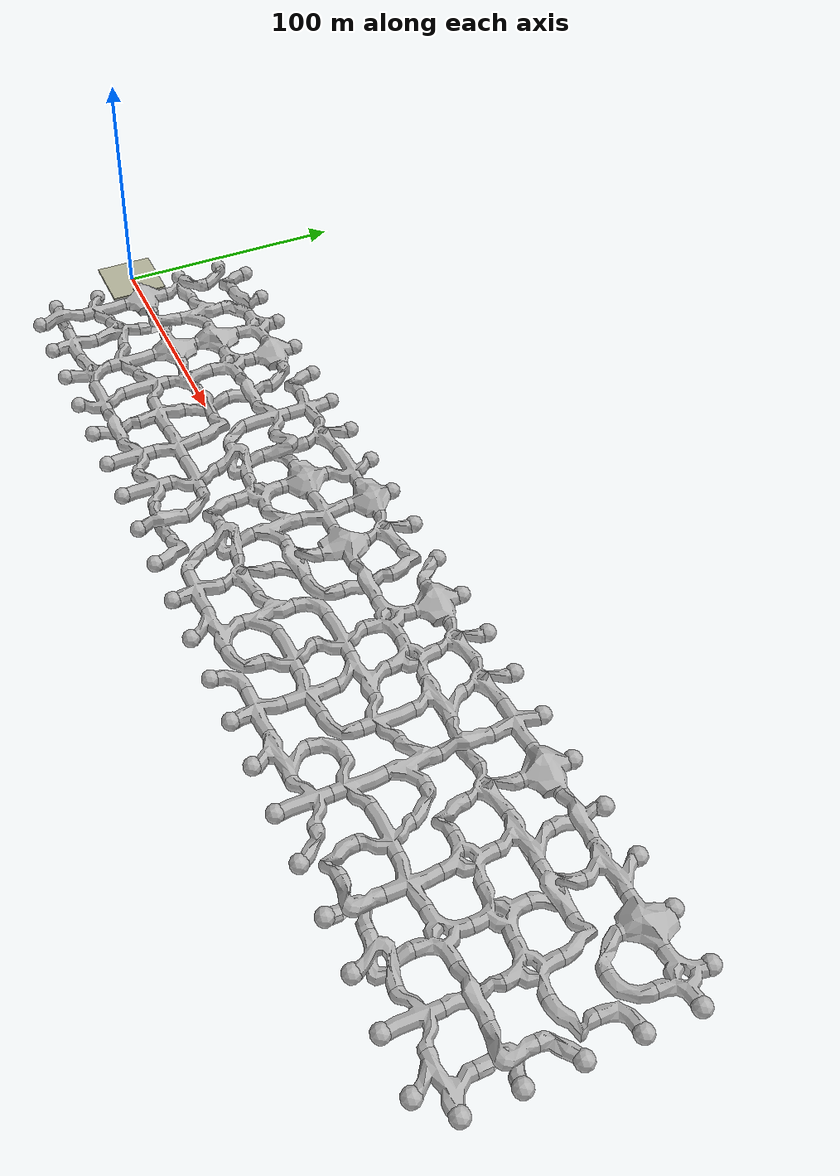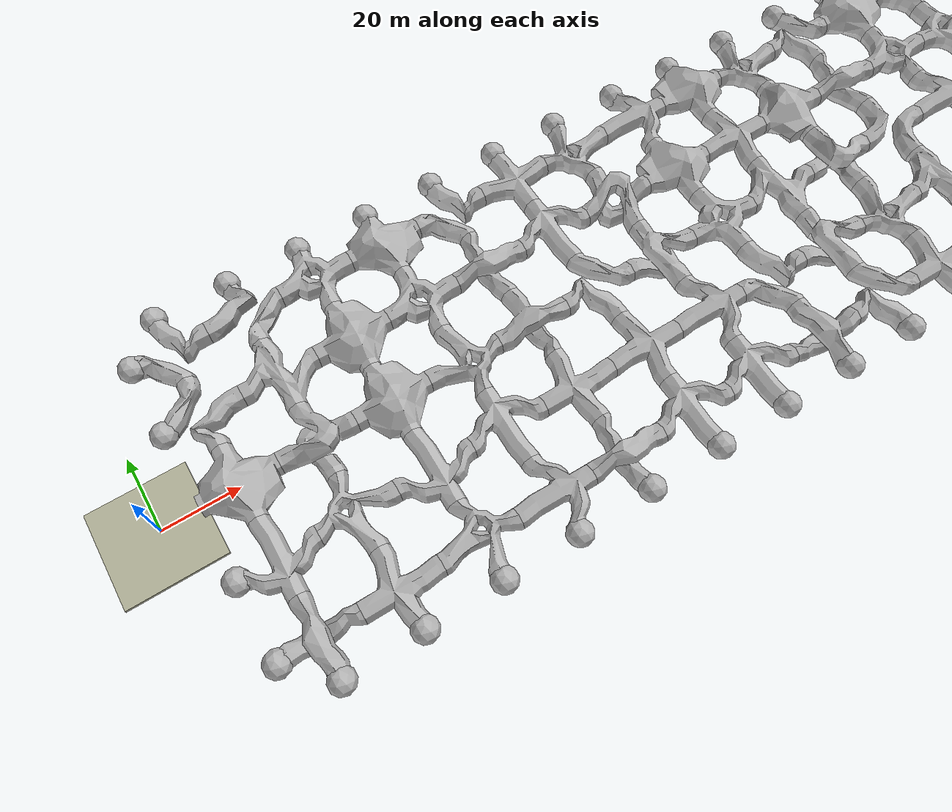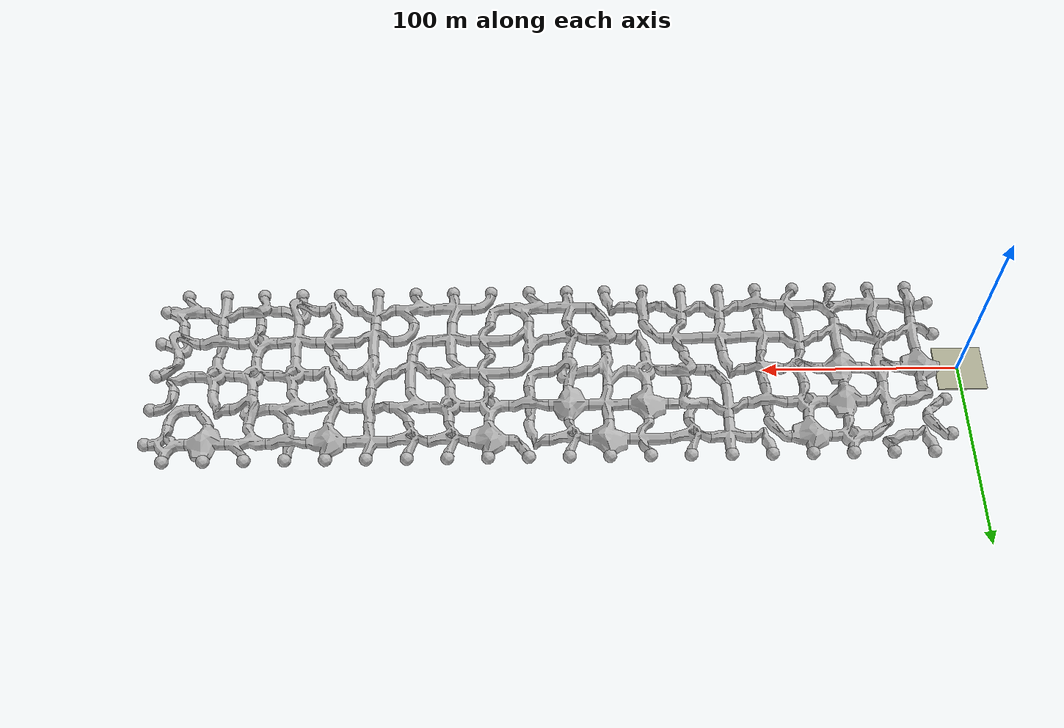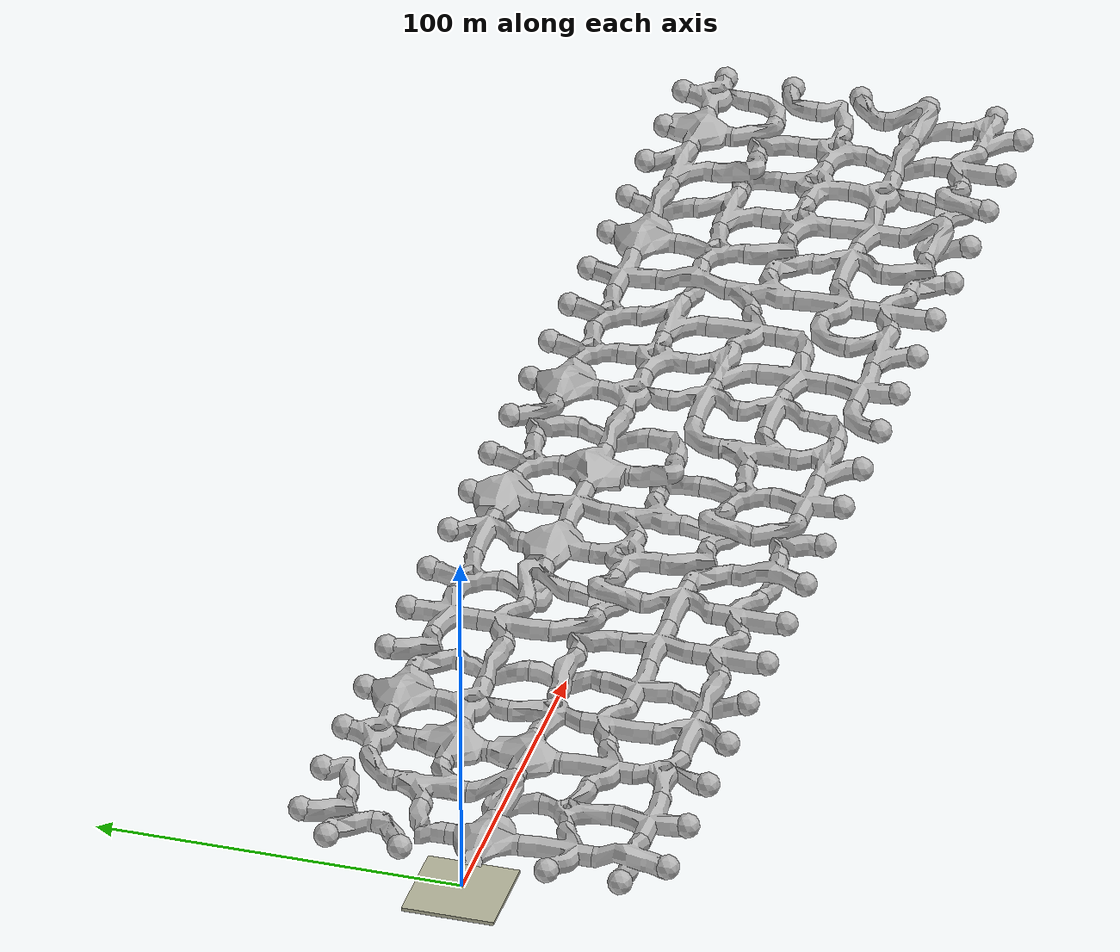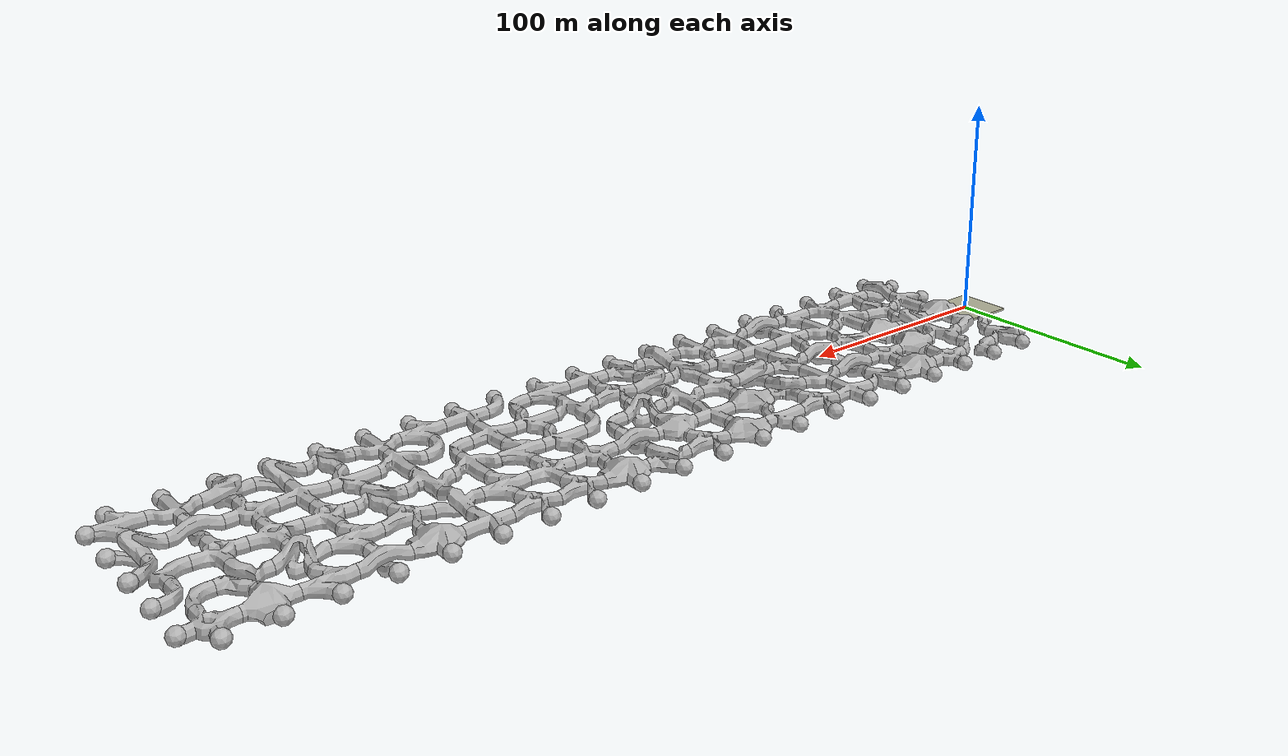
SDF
<sdf version="1.6">
 <world name="default">
  <scene>
   <ambient>0.8 0.8 0.8 1.0</ambient>
   <background>0.34 0.39 0.43 1.0</background>
   <grid>false</grid>
   <origin_visual>false</origin_visual>
  </scene>
  <model name="staging">
   <pose>-1.1817160000000015 0 -0.002 0 0 0</pose>
   <static>true</static>
   <link name="link">
    <pose>0 0 -0.5 0 0 0</pose>
    <visual name="visual">
     <geometry><box><size>25 25 1</size></box></geometry>
     <material>
      <script><uri>file://media/materials/scripts/gazebo.material</uri><name>Gazebo/Residential</name></script>
     </material>
    </visual>
    <collision name="collision"><geometry><box><size>25 20 1</size></box></geometry></collision>
   </link>
  </model>
  <model name="tunnel_entrance">
   <pose>10
        0
        -0.001
        0
        0
        -1.5707963267948966</pose>
   <static>true</static>
   <link name="link">
    <collision name="collision">
     <geometry>
      <mesh>
       <scale>0.008
                0.008 0.008</scale>
       <uri>model://tunnel_entrance/meshes/Entrance.obj</uri>
      </mesh>
     </geometry>
    </collision>
    <visual name="visual">
     <geometry>
      <mesh>
       <scale>0.008
                0.008 0.008</scale>
       <uri>model://tunnel_entrance/meshes/Entrance.obj</uri>
      </mesh>
     </geometry>
    </visual>
   </link>
  </model>
  <model name="start_area">
   <static>true</static>
   <pose>10
        0
        1.5
        0
        0
        0</pose>
   <link name="link">
    <collision name="collision">
     <geometry><box><size>1.0
                5.0
                3.0</size></box></geometry>
     <surface><contact><collide_without_contact>1</collide_without_contact></contact></surface>
    </collision>
    <sensor name="start_area_sensor" type="contact"><contact><collision>collision</collision></contact></sensor>
   </link>
   <plugin name="touch_start_area" filename="libTouchPlugin.so">
    <sensor>start_area_sensor</sensor>
    <time>0.001</time>
    <namespace>subt/start</namespace>
    <enabled>true</enabled>
   </plugin>
  </model>
  <plugin name="game_logic_plugin" filename="libGameLogicPlugin.so"/>
  <light name="user_spot_light_0" type="spot">
   <pose>12 0 15 0 0.65 0</pose>
   <diffuse>1 1 1 1</diffuse>
   <specular>0.1 0.1 0.1 1</specular>
   <direction>0 0 -1</direction>
   <attenuation>
    <range>30</range>
    <constant>0.001</constant>
    <linear>0.01</linear>
    <quadratic>0.000</quadratic>
   </attenuation>
   <spot><inner_angle>0.0</inner_angle><outer_angle>1.5</outer_angle><falloff>0.01</falloff></spot>
  </light>
  <include>
   <uri>model://cave_tile_10</uri>
   <name>tile_1</name>
   <pose>20 -40 0 0 0 -1.5707963267948966</pose>
  </include>
  <include>
   <uri>model://cave_tile_7</uri>
   <name>tile_2</name>
   <pose>20 -20 0 0 0 1.5707963267948966</pose>
  </include>
  <include><uri>model://cave_tile_6</uri><name>tile_3</name><pose>20 0 0 0 0 0</pose></include>
  <include><uri>model://cave_tile_4</uri><name>tile_4</name><pose>20 20 0 0 0 3.141592653589793</pose></include>
  <include>
   <uri>model://cave_tile_4</uri>
   <name>tile_5</name>
   <pose>20 40 0 0 0 -1.5707963267948966</pose>
  </include>
  <include><uri>model://cave_tile_3</uri><name>tile_6</name><pose>40 -40 0 0 0 0</pose></include>
  <include>
   <uri>model://cave_tile_8</uri>
   <name>tile_7</name>
   <pose>40 -20 0 0 0 1.5707963267948966</pose>
  </include>
  <include>
   <uri>model://cave_tile_9</uri>
   <name>tile_8</name>
   <pose>40 0 0 0 0 -1.5707963267948966</pose>
  </include>
  <include>
   <uri>model://cave_tile_5</uri>
   <name>tile_9</name>
   <pose>40 20 0 0 0 1.5707963267948966</pose>
  </include>
  <include><uri>model://cave_tile_4</uri><name>tile_10</name><pose>40 40 0 0 0 0</pose></include>
  <include><uri>model://cave_tile_8</uri><name>tile_11</name><pose>60 -40 0 0 0 0</pose></include>
  <include>
   <uri>model://cave_tile_7</uri>
   <name>tile_12</name>
   <pose>60 -20 0 0 0 1.5707963267948966</pose>
  </include>
  <include>
   <uri>model://cave_tile_6</uri>
   <name>tile_13</name>
   <pose>60 0 0 0 0 1.5707963267948966</pose>
  </include>
  <include>
   <uri>model://cave_tile_6</uri>
   <name>tile_14</name>
   <pose>60 20 0 0 0 1.5707963267948966</pose>
  </include>
  <include><uri>model://cave_tile_1</uri><name>tile_15</name><pose>60 40 0 0 0 0</pose></include>
  <include>
   <uri>model://cave_tile_7</uri>
   <name>tile_16</name>
   <pose>80 -40 0 0 0 3.141592653589793</pose>
  </include>
  <include>
   <uri>model://cave_tile_7</uri>
   <name>tile_17</name>
   <pose>80 -20 0 0 0 -1.5707963267948966</pose>
  </include>
  <include>
   <uri>model://cave_tile_8</uri>
   <name>tile_18</name>
   <pose>80 0 0 0 0 -1.5707963267948966</pose>
  </include>
  <include><uri>model://cave_tile_1</uri><name>tile_19</name><pose>80 20 0 0 0 0</pose></include>
  <include><uri>model://cave_tile_6</uri><name>tile_20</name><pose>80 40 0 0 0 0</pose></include>
  <include><uri>model://cave_tile_10</uri><name>tile_21</name><pose>100 -40 0 0 0 0</pose></include>
  <include><uri>model://cave_tile_3</uri><name>tile_22</name><pose>100 -20 0 0 0 0</pose></include>
  <include>
   <uri>model://cave_tile_10</uri>
   <name>tile_23</name>
   <pose>100 0 0 0 0 3.141592653589793</pose>
  </include>
  <include><uri>model://cave_tile_10</uri><name>tile_24</name><pose>100 20 0 0 0 0</pose></include>
  <include>
   <uri>model://cave_tile_4</uri>
   <name>tile_25</name>
   <pose>100 40 0 0 0 -1.5707963267948966</pose>
  </include>
  <include>
   <uri>model://cave_tile_7</uri>
   <name>tile_26</name>
   <pose>120 -40 0 0 0 -1.5707963267948966</pose>
  </include>
  <include>
   <uri>model://cave_tile_3</uri>
   <name>tile_27</name>
   <pose>120 -20 0 0 0 3.141592653589793</pose>
  </include>
  <include>
   <uri>model://cave_tile_4</uri>
   <name>tile_28</name>
   <pose>120 0 0 0 0 1.5707963267948966</pose>
  </include>
  <include>
   <uri>model://cave_tile_7</uri>
   <name>tile_29</name>
   <pose>120 20 0 0 0 -1.5707963267948966</pose>
  </include>
  <include>
   <uri>model://cave_tile_3</uri>
   <name>tile_30</name>
   <pose>120 40 0 0 0 1.5707963267948966</pose>
  </include>
  <include>
   <uri>model://cave_tile_7</uri>
   <name>tile_31</name>
   <pose>140 -40 0 0 0 -1.5707963267948966</pose>
  </include>
  <include>
   <uri>model://cave_tile_7</uri>
   <name>tile_32</name>
   <pose>140 -20 0 0 0 3.141592653589793</pose>
  </include>
  <include>
   <uri>model://cave_tile_9</uri>
   <name>tile_33</name>
   <pose>140 0 0 0 0 1.5707963267948966</pose>
  </include>
  <include><uri>model://cave_tile_9</uri><name>tile_34</name><pose>140 20 0 0 0 0</pose></include>
  <include>
   <uri>model://cave_tile_8</uri>
   <name>tile_35</name>
   <pose>140 40 0 0 0 3.141592653589793</pose>
  </include>
  <include>
   <uri>model://cave_tile_10</uri>
   <name>tile_36</name>
   <pose>160 -40 0 0 0 1.5707963267948966</pose>
  </include>
  <include>
   <uri>model://cave_tile_4</uri>
   <name>tile_37</name>
   <pose>160 -20 0 0 0 -1.5707963267948966</pose>
  </include>
  <include>
   <uri>model://cave_tile_1</uri>
   <name>tile_38</name>
   <pose>160 0 0 0 0 -1.5707963267948966</pose>
  </include>
  <include>
   <uri>model://cave_tile_6</uri>
   <name>tile_39</name>
   <pose>160 20 0 0 0 3.141592653589793</pose>
  </include>
  <include>
   <uri>model://cave_tile_7</uri>
   <name>tile_40</name>
   <pose>160 40 0 0 0 3.141592653589793</pose>
  </include>
  <include>
   <uri>model://cave_tile_4</uri>
   <name>tile_41</name>
   <pose>180 -40 0 0 0 1.5707963267948966</pose>
  </include>
  <include>
   <uri>model://cave_tile_9</uri>
   <name>tile_42</name>
   <pose>180 -20 0 0 0 1.5707963267948966</pose>
  </include>
  <include>
   <uri>model://cave_tile_5</uri>
   <name>tile_43</name>
   <pose>180 0 0 0 0 -1.5707963267948966</pose>
  </include>
  <include>
   <uri>model://cave_tile_3</uri>
   <name>tile_44</name>
   <pose>180 20 0 0 0 3.141592653589793</pose>
  </include>
  <include>
   <uri>model://cave_tile_6</uri>
   <name>tile_45</name>
   <pose>180 40 0 0 0 3.141592653589793</pose>
  </include>
  <include><uri>model://cave_tile_3</uri><name>tile_46</name><pose>200 -40 0 0 0 0</pose></include>
  <include>
   <uri>model://cave_tile_8</uri>
   <name>tile_47</name>
   <pose>200 -20 0 0 0 3.141592653589793</pose>
  </include>
  <include>
   <uri>model://cave_tile_9</uri>
   <name>tile_48</name>
   <pose>200 0 0 0 0 3.141592653589793</pose>
  </include>
  <include>
   <uri>model://cave_tile_6</uri>
   <name>tile_49</name>
   <pose>200 20 0 0 0 -1.5707963267948966</pose>
  </include>
  <include>
   <uri>model://cave_tile_8</uri>
   <name>tile_50</name>
   <pose>200 40 0 0 0 3.141592653589793</pose>
  </include>
  <include><uri>model://cave_tile_5</uri><name>tile_51</name><pose>220 -40 0 0 0 0</pose></include>
  <include>
   <uri>model://cave_tile_5</uri>
   <name>tile_52</name>
   <pose>220 -20 0 0 0 1.5707963267948966</pose>
  </include>
  <include>
   <uri>model://cave_tile_2</uri>
   <name>tile_53</name>
   <pose>220 0 0 0 0 3.141592653589793</pose>
  </include>
  <include><uri>model://cave_tile_10</uri><name>tile_54</name><pose>220 20 0 0 0 0</pose></include>
  <include>
   <uri>model://cave_tile_4</uri>
   <name>tile_55</name>
   <pose>220 40 0 0 0 1.5707963267948966</pose>
  </include>
  <include>
   <uri>model://cave_tile_2</uri>
   <name>tile_56</name>
   <pose>240 -40 0 0 0 3.141592653589793</pose>
  </include>
  <include>
   <uri>model://cave_tile_7</uri>
   <name>tile_57</name>
   <pose>240 -20 0 0 0 3.141592653589793</pose>
  </include>
  <include>
   <uri>model://cave_tile_7</uri>
   <name>tile_58</name>
   <pose>240 0 0 0 0 3.141592653589793</pose>
  </include>
  <include><uri>model://cave_tile_1</uri><name>tile_59</name><pose>240 20 0 0 0 0</pose></include>
  <include><uri>model://cave_tile_6</uri><name>tile_60</name><pose>240 40 0 0 0 0</pose></include>
  <include><uri>model://cave_tile_3</uri><name>tile_61</name><pose>260 -40 0 0 0 0</pose></include>
  <include>
   <uri>model://cave_tile_3</uri>
   <name>tile_62</name>
   <pose>260 -20 0 0 0 1.5707963267948966</pose>
  </include>
  <include><uri>model://cave_tile_5</uri><name>tile_63</name><pose>260 0 0 0 0 0</pose></include>
  <include>
   <uri>model://cave_tile_1</uri>
   <name>tile_64</name>
   <pose>260 20 0 0 0 1.5707963267948966</pose>
  </include>
  <include>
   <uri>model://cave_tile_8</uri>
   <name>tile_65</name>
   <pose>260 40 0 0 0 3.141592653589793</pose>
  </include>
  <include>
   <uri>model://cave_tile_5</uri>
   <name>tile_66</name>
   <pose>280 -40 0 0 0 3.141592653589793</pose>
  </include>
  <include>
   <uri>model://cave_tile_2</uri>
   <name>tile_67</name>
   <pose>280 -20 0 0 0 3.141592653589793</pose>
  </include>
  <include>
   <uri>model://cave_tile_7</uri>
   <name>tile_68</name>
   <pose>280 0 0 0 0 1.5707963267948966</pose>
  </include>
  <include>
   <uri>model://cave_tile_5</uri>
   <name>tile_69</name>
   <pose>280 20 0 0 0 3.141592653589793</pose>
  </include>
  <include>
   <uri>model://cave_tile_8</uri>
   <name>tile_70</name>
   <pose>280 40 0 0 0 3.141592653589793</pose>
  </include>
  <include>
   <uri>model://cave_tile_7</uri>
   <name>tile_71</name>
   <pose>300 -40 0 0 0 -1.5707963267948966</pose>
  </include>
  <include>
   <uri>model://cave_tile_7</uri>
   <name>tile_72</name>
   <pose>300 -20 0 0 0 1.5707963267948966</pose>
  </include>
  <include>
   <uri>model://cave_tile_5</uri>
   <name>tile_73</name>
   <pose>300 0 0 0 0 -1.5707963267948966</pose>
  </include>
  <include>
   <uri>model://cave_tile_10</uri>
   <name>tile_74</name>
   <pose>300 20 0 0 0 1.5707963267948966</pose>
  </include>
  <include><uri>model://cave_tile_3</uri><name>tile_75</name><pose>300 40 0 0 0 0</pose></include>
  <include>
   <uri>model://cave_tile_4</uri>
   <name>tile_76</name>
   <pose>320 -40 0 0 0 -1.5707963267948966</pose>
  </include>
  <include>
   <uri>model://cave_tile_7</uri>
   <name>tile_77</name>
   <pose>320 -20 0 0 0 3.141592653589793</pose>
  </include>
  <include>
   <uri>model://cave_tile_4</uri>
   <name>tile_78</name>
   <pose>320 0 0 0 0 -1.5707963267948966</pose>
  </include>
  <include>
   <uri>model://cave_tile_8</uri>
   <name>tile_79</name>
   <pose>320 20 0 0 0 3.141592653589793</pose>
  </include>
  <include><uri>model://cave_tile_6</uri><name>tile_80</name><pose>320 40 0 0 0 0</pose></include>
  <include>
   <uri>model://cave_tile_9</uri>
   <name>tile_81</name>
   <pose>340 -40 0 0 0 -1.5707963267948966</pose>
  </include>
  <include>
   <uri>model://cave_tile_3</uri>
   <name>tile_82</name>
   <pose>340 -20 0 0 0 1.5707963267948966</pose>
  </include>
  <include>
   <uri>model://cave_tile_1</uri>
   <name>tile_83</name>
   <pose>340 0 0 0 0 1.5707963267948966</pose>
  </include>
  <include>
   <uri>model://cave_tile_5</uri>
   <name>tile_84</name>
   <pose>340 20 0 0 0 3.141592653589793</pose>
  </include>
  <include><uri>model://cave_tile_10</uri><name>tile_85</name><pose>340 40 0 0 0 0</pose></include>
  <include>
   <uri>model://cave_tile_9</uri>
   <name>tile_86</name>
   <pose>360 -40 0 0 0 1.5707963267948966</pose>
  </include>
  <include><uri>model://cave_tile_1</uri><name>tile_87</name><pose>360 -20 0 0 0 0</pose></include>
  <include>
   <uri>model://cave_tile_1</uri>
   <name>tile_88</name>
   <pose>360 0 0 0 0 -1.5707963267948966</pose>
  </include>
  <include>
   <uri>model://cave_tile_9</uri>
   <name>tile_89</name>
   <pose>360 20 0 0 0 3.141592653589793</pose>
  </include>
  <include>
   <uri>model://cave_tile_5</uri>
   <name>tile_90</name>
   <pose>360 40 0 0 0 3.141592653589793</pose>
  </include>
  <include>
   <uri>model://cave_tile_7</uri>
   <name>tile_91</name>
   <pose>380 -40 0 0 0 -1.5707963267948966</pose>
  </include>
  <include><uri>model://cave_tile_10</uri><name>tile_92</name><pose>380 -20 0 0 0 0</pose></include>
  <include>
   <uri>model://cave_tile_1</uri>
   <name>tile_93</name>
   <pose>380 0 0 0 0 1.5707963267948966</pose>
  </include>
  <include>
   <uri>model://cave_tile_4</uri>
   <name>tile_94</name>
   <pose>380 20 0 0 0 1.5707963267948966</pose>
  </include>
  <include>
   <uri>model://cave_tile_6</uri>
   <name>tile_95</name>
   <pose>380 40 0 0 0 1.5707963267948966</pose>
  </include>
  <include><uri>model://cave_tile_5</uri><name>tile_96</name><pose>400 -40 0 0 0 0</pose></include>
  <include>
   <uri>model://cave_tile_9</uri>
   <name>tile_97</name>
   <pose>400 -20 0 0 0 -1.5707963267948966</pose>
  </include>
  <include><uri>model://cave_tile_4</uri><name>tile_98</name><pose>400 0 0 0 0 0</pose></include>
  <include><uri>model://cave_tile_2</uri><name>tile_99</name><pose>400 20 0 0 0 0</pose></include>
  <include><uri>model://cave_tile_1</uri><name>tile_100</name><pose>400 40 0 0 0 0</pose></include>
  <model name="blocker_101">
   <pose>20
    -50.0
    0
    0
    0
    0</pose>
   <static>true</static>
   <link name="link">
    <pose>0 0 0 1.5707963267948966 0 0</pose>
    <collision name="collision">
     <geometry>
      <mesh><scale>1.2 1.2 1.2</scale><uri>model://cave_tile_blocker/meshes/cave_tile_blocker.obj</uri></mesh>
     </geometry>
    </collision>
    <visual name="visual">
     <geometry>
      <mesh><scale>1.2 1.2 1.2</scale><uri>model://cave_tile_blocker/meshes/cave_tile_blocker.obj</uri></mesh>
     </geometry>
    </visual>
   </link>
  </model>
  <model name="blocker_102">
   <pose>20
    50.0
    0
    0
    0
    0</pose>
   <static>true</static>
   <link name="link">
    <pose>0 0 0 1.5707963267948966 0 0</pose>
    <collision name="collision">
     <geometry>
      <mesh><scale>1.2 1.2 1.2</scale><uri>model://cave_tile_blocker/meshes/cave_tile_blocker.obj</uri></mesh>
     </geometry>
    </collision>
    <visual name="visual">
     <geometry>
      <mesh><scale>1.2 1.2 1.2</scale><uri>model://cave_tile_blocker/meshes/cave_tile_blocker.obj</uri></mesh>
     </geometry>
    </visual>
   </link>
  </model>
  <model name="blocker_103">
   <pose>40
    -50.0
    0
    0
    0
    0</pose>
   <static>true</static>
   <link name="link">
    <pose>0 0 0 1.5707963267948966 0 0</pose>
    <collision name="collision">
     <geometry>
      <mesh><scale>1.2 1.2 1.2</scale><uri>model://cave_tile_blocker/meshes/cave_tile_blocker.obj</uri></mesh>
     </geometry>
    </collision>
    <visual name="visual">
     <geometry>
      <mesh><scale>1.2 1.2 1.2</scale><uri>model://cave_tile_blocker/meshes/cave_tile_blocker.obj</uri></mesh>
     </geometry>
    </visual>
   </link>
  </model>
  <model name="blocker_104">
   <pose>40
    50.0
    0
    0
    0
    0</pose>
   <static>true</static>
   <link name="link">
    <pose>0 0 0 1.5707963267948966 0 0</pose>
    <collision name="collision">
     <geometry>
      <mesh><scale>1.2 1.2 1.2</scale><uri>model://cave_tile_blocker/meshes/cave_tile_blocker.obj</uri></mesh>
     </geometry>
    </collision>
    <visual name="visual">
     <geometry>
      <mesh><scale>1.2 1.2 1.2</scale><uri>model://cave_tile_blocker/meshes/cave_tile_blocker.obj</uri></mesh>
     </geometry>
    </visual>
   </link>
  </model>
  <model name="blocker_105">
   <pose>60
    -50.0
    0
    0
    0
    0</pose>
   <static>true</static>
   <link name="link">
    <pose>0 0 0 1.5707963267948966 0 0</pose>
    <collision name="collision">
     <geometry>
      <mesh><scale>1.2 1.2 1.2</scale><uri>model://cave_tile_blocker/meshes/cave_tile_blocker.obj</uri></mesh>
     </geometry>
    </collision>
    <visual name="visual">
     <geometry>
      <mesh><scale>1.2 1.2 1.2</scale><uri>model://cave_tile_blocker/meshes/cave_tile_blocker.obj</uri></mesh>
     </geometry>
    </visual>
   </link>
  </model>
  <model name="blocker_106">
   <pose>60
    50.0
    0
    0
    0
    0</pose>
   <static>true</static>
   <link name="link">
    <pose>0 0 0 1.5707963267948966 0 0</pose>
    <collision name="collision">
     <geometry>
      <mesh><scale>1.2 1.2 1.2</scale><uri>model://cave_tile_blocker/meshes/cave_tile_blocker.obj</uri></mesh>
     </geometry>
    </collision>
    <visual name="visual">
     <geometry>
      <mesh><scale>1.2 1.2 1.2</scale><uri>model://cave_tile_blocker/meshes/cave_tile_blocker.obj</uri></mesh>
     </geometry>
    </visual>
   </link>
  </model>
  <model name="blocker_107">
   <pose>80
    -50.0
    0
    0
    0
    0</pose>
   <static>true</static>
   <link name="link">
    <pose>0 0 0 1.5707963267948966 0 0</pose>
    <collision name="collision">
     <geometry>
      <mesh><scale>1.2 1.2 1.2</scale><uri>model://cave_tile_blocker/meshes/cave_tile_blocker.obj</uri></mesh>
     </geometry>
    </collision>
    <visual name="visual">
     <geometry>
      <mesh><scale>1.2 1.2 1.2</scale><uri>model://cave_tile_blocker/meshes/cave_tile_blocker.obj</uri></mesh>
     </geometry>
    </visual>
   </link>
  </model>
  <model name="blocker_108">
   <pose>80
    50.0
    0
    0
    0
    0</pose>
   <static>true</static>
   <link name="link">
    <pose>0 0 0 1.5707963267948966 0 0</pose>
    <collision name="collision">
     <geometry>
      <mesh><scale>1.2 1.2 1.2</scale><uri>model://cave_tile_blocker/meshes/cave_tile_blocker.obj</uri></mesh>
     </geometry>
    </collision>
    <visual name="visual">
     <geometry>
      <mesh><scale>1.2 1.2 1.2</scale><uri>model://cave_tile_blocker/meshes/cave_tile_blocker.obj</uri></mesh>
     </geometry>
    </visual>
   </link>
  </model>
  <model name="blocker_109">
   <pose>100
    -50.0
    0
    0
    0
    0</pose>
   <static>true</static>
   <link name="link">
    <pose>0 0 0 1.5707963267948966 0 0</pose>
    <collision name="collision">
     <geometry>
      <mesh><scale>1.2 1.2 1.2</scale><uri>model://cave_tile_blocker/meshes/cave_tile_blocker.obj</uri></mesh>
     </geometry>
    </collision>
    <visual name="visual">
     <geometry>
      <mesh><scale>1.2 1.2 1.2</scale><uri>model://cave_tile_blocker/meshes/cave_tile_blocker.obj</uri></mesh>
     </geometry>
    </visual>
   </link>
  </model>
  <model name="blocker_110">
   <pose>100
    50.0
    0
    0
    0
    0</pose>
   <static>true</static>
   <link name="link">
    <pose>0 0 0 1.5707963267948966 0 0</pose>
    <collision name="collision">
     <geometry>
      <mesh><scale>1.2 1.2 1.2</scale><uri>model://cave_tile_blocker/meshes/cave_tile_blocker.obj</uri></mesh>
     </geometry>
    </collision>
    <visual name="visual">
     <geometry>
      <mesh><scale>1.2 1.2 1.2</scale><uri>model://cave_tile_blocker/meshes/cave_tile_blocker.obj</uri></mesh>
     </geometry>
    </visual>
   </link>
  </model>
  <model name="blocker_111">
   <pose>120
    -50.0
    0
    0
    0
    0</pose>
   <static>true</static>
   <link name="link">
    <pose>0 0 0 1.5707963267948966 0 0</pose>
    <collision name="collision">
     <geometry>
      <mesh><scale>1.2 1.2 1.2</scale><uri>model://cave_tile_blocker/meshes/cave_tile_blocker.obj</uri></mesh>
     </geometry>
    </collision>
    <visual name="visual">
     <geometry>
      <mesh><scale>1.2 1.2 1.2</scale><uri>model://cave_tile_blocker/meshes/cave_tile_blocker.obj</uri></mesh>
     </geometry>
    </visual>
   </link>
  </model>
  <model name="blocker_112">
   <pose>120
    50.0
    0
    0
    0
    0</pose>
   <static>true</static>
   <link name="link">
    <pose>0 0 0 1.5707963267948966 0 0</pose>
    <collision name="collision">
     <geometry>
      <mesh><scale>1.2 1.2 1.2</scale><uri>model://cave_tile_blocker/meshes/cave_tile_blocker.obj</uri></mesh>
     </geometry>
    </collision>
    <visual name="visual">
     <geometry>
      <mesh><scale>1.2 1.2 1.2</scale><uri>model://cave_tile_blocker/meshes/cave_tile_blocker.obj</uri></mesh>
     </geometry>
    </visual>
   </link>
  </model>
  <model name="blocker_113">
   <pose>140
    -50.0
    0
    0
    0
    0</pose>
   <static>true</static>
   <link name="link">
    <pose>0 0 0 1.5707963267948966 0 0</pose>
    <collision name="collision">
     <geometry>
      <mesh><scale>1.2 1.2 1.2</scale><uri>model://cave_tile_blocker/meshes/cave_tile_blocker.obj</uri></mesh>
     </geometry>
    </collision>
    <visual name="visual">
     <geometry>
      <mesh><scale>1.2 1.2 1.2</scale><uri>model://cave_tile_blocker/meshes/cave_tile_blocker.obj</uri></mesh>
     </geometry>
    </visual>
   </link>
  </model>
  <model name="blocker_114">
   <pose>140
    50.0
    0
    0
    0
    0</pose>
   <static>true</static>
   <link name="link">
    <pose>0 0 0 1.5707963267948966 0 0</pose>
    <collision name="collision">
     <geometry>
      <mesh><scale>1.2 1.2 1.2</scale><uri>model://cave_tile_blocker/meshes/cave_tile_blocker.obj</uri></mesh>
     </geometry>
    </collision>
    <visual name="visual">
     <geometry>
      <mesh><scale>1.2 1.2 1.2</scale><uri>model://cave_tile_blocker/meshes/cave_tile_blocker.obj</uri></mesh>
     </geometry>
    </visual>
   </link>
  </model>
  <model name="blocker_115">
   <pose>160
    -50.0
    0
    0
    0
    0</pose>
   <static>true</static>
   <link name="link">
    <pose>0 0 0 1.5707963267948966 0 0</pose>
    <collision name="collision">
     <geometry>
      <mesh><scale>1.2 1.2 1.2</scale><uri>model://cave_tile_blocker/meshes/cave_tile_blocker.obj</uri></mesh>
     </geometry>
    </collision>
    <visual name="visual">
     <geometry>
      <mesh><scale>1.2 1.2 1.2</scale><uri>model://cave_tile_blocker/meshes/cave_tile_blocker.obj</uri></mesh>
     </geometry>
    </visual>
   </link>
  </model>
  <model name="blocker_116">
   <pose>160
    50.0
    0
    0
    0
    0</pose>
   <static>true</static>
   <link name="link">
    <pose>0 0 0 1.5707963267948966 0 0</pose>
    <collision name="collision">
     <geometry>
      <mesh><scale>1.2 1.2 1.2</scale><uri>model://cave_tile_blocker/meshes/cave_tile_blocker.obj</uri></mesh>
     </geometry>
    </collision>
    <visual name="visual">
     <geometry>
      <mesh><scale>1.2 1.2 1.2</scale><uri>model://cave_tile_blocker/meshes/cave_tile_blocker.obj</uri></mesh>
     </geometry>
    </visual>
   </link>
  </model>
  <model name="blocker_117">
   <pose>180
    -50.0
    0
    0
    0
    0</pose>
   <static>true</static>
   <link name="link">
    <pose>0 0 0 1.5707963267948966 0 0</pose>
    <collision name="collision">
     <geometry>
      <mesh><scale>1.2 1.2 1.2</scale><uri>model://cave_tile_blocker/meshes/cave_tile_blocker.obj</uri></mesh>
     </geometry>
    </collision>
    <visual name="visual">
     <geometry>
      <mesh><scale>1.2 1.2 1.2</scale><uri>model://cave_tile_blocker/meshes/cave_tile_blocker.obj</uri></mesh>
     </geometry>
    </visual>
   </link>
  </model>
  <model name="blocker_118">
   <pose>180
    50.0
    0
    0
    0
    0</pose>
   <static>true</static>
   <link name="link">
    <pose>0 0 0 1.5707963267948966 0 0</pose>
    <collision name="collision">
     <geometry>
      <mesh><scale>1.2 1.2 1.2</scale><uri>model://cave_tile_blocker/meshes/cave_tile_blocker.obj</uri></mesh>
     </geometry>
    </collision>
    <visual name="visual">
     <geometry>
      <mesh><scale>1.2 1.2 1.2</scale><uri>model://cave_tile_blocker/meshes/cave_tile_blocker.obj</uri></mesh>
     </geometry>
    </visual>
   </link>
  </model>
  <model name="blocker_119">
   <pose>200
    -50.0
    0
    0
    0
    0</pose>
   <static>true</static>
   <link name="link">
    <pose>0 0 0 1.5707963267948966 0 0</pose>
    <collision name="collision">
     <geometry>
      <mesh><scale>1.2 1.2 1.2</scale><uri>model://cave_tile_blocker/meshes/cave_tile_blocker.obj</uri></mesh>
     </geometry>
    </collision>
    <visual name="visual">
     <geometry>
      <mesh><scale>1.2 1.2 1.2</scale><uri>model://cave_tile_blocker/meshes/cave_tile_blocker.obj</uri></mesh>
     </geometry>
    </visual>
   </link>
  </model>
  <model name="blocker_120">
   <pose>200
    50.0
    0
    0
    0
    0</pose>
   <static>true</static>
   <link name="link">
    <pose>0 0 0 1.5707963267948966 0 0</pose>
    <collision name="collision">
     <geometry>
      <mesh><scale>1.2 1.2 1.2</scale><uri>model://cave_tile_blocker/meshes/cave_tile_blocker.obj</uri></mesh>
     </geometry>
    </collision>
    <visual name="visual">
     <geometry>
      <mesh><scale>1.2 1.2 1.2</scale><uri>model://cave_tile_blocker/meshes/cave_tile_blocker.obj</uri></mesh>
     </geometry>
    </visual>
   </link>
  </model>
  <model name="blocker_121">
   <pose>220
    -50.0
    0
    0
    0
    0</pose>
   <static>true</static>
   <link name="link">
    <pose>0 0 0 1.5707963267948966 0 0</pose>
    <collision name="collision">
     <geometry>
      <mesh><scale>1.2 1.2 1.2</scale><uri>model://cave_tile_blocker/meshes/cave_tile_blocker.obj</uri></mesh>
     </geometry>
    </collision>
    <visual name="visual">
     <geometry>
      <mesh><scale>1.2 1.2 1.2</scale><uri>model://cave_tile_blocker/meshes/cave_tile_blocker.obj</uri></mesh>
     </geometry>
    </visual>
   </link>
  </model>
  <model name="blocker_122">
   <pose>220
    50.0
    0
    0
    0
    0</pose>
   <static>true</static>
   <link name="link">
    <pose>0 0 0 1.5707963267948966 0 0</pose>
    <collision name="collision">
     <geometry>
      <mesh><scale>1.2 1.2 1.2</scale><uri>model://cave_tile_blocker/meshes/cave_tile_blocker.obj</uri></mesh>
     </geometry>
    </collision>
    <visual name="visual">
     <geometry>
      <mesh><scale>1.2 1.2 1.2</scale><uri>model://cave_tile_blocker/meshes/cave_tile_blocker.obj</uri></mesh>
     </geometry>
    </visual>
   </link>
  </model>
  <model name="blocker_123">
   <pose>240
    -50.0
    0
    0
    0
    0</pose>
   <static>true</static>
   <link name="link">
    <pose>0 0 0 1.5707963267948966 0 0</pose>
    <collision name="collision">
     <geometry>
      <mesh><scale>1.2 1.2 1.2</scale><uri>model://cave_tile_blocker/meshes/cave_tile_blocker.obj</uri></mesh>
     </geometry>
    </collision>
    <visual name="visual">
     <geometry>
      <mesh><scale>1.2 1.2 1.2</scale><uri>model://cave_tile_blocker/meshes/cave_tile_blocker.obj</uri></mesh>
     </geometry>
    </visual>
   </link>
  </model>
  <model name="blocker_124">
   <pose>240
    50.0
    0
    0
    0
    0</pose>
   <static>true</static>
   <link name="link">
    <pose>0 0 0 1.5707963267948966 0 0</pose>
    <collision name="collision">
     <geometry>
      <mesh><scale>1.2 1.2 1.2</scale><uri>model://cave_tile_blocker/meshes/cave_tile_blocker.obj</uri></mesh>
     </geometry>
    </collision>
    <visual name="visual">
     <geometry>
      <mesh><scale>1.2 1.2 1.2</scale><uri>model://cave_tile_blocker/meshes/cave_tile_blocker.obj</uri></mesh>
     </geometry>
    </visual>
   </link>
  </model>
  <model name="blocker_125">
   <pose>260
    -50.0
    0
    0
    0
    0</pose>
   <static>true</static>
   <link name="link">
    <pose>0 0 0 1.5707963267948966 0 0</pose>
    <collision name="collision">
     <geometry>
      <mesh><scale>1.2 1.2 1.2</scale><uri>model://cave_tile_blocker/meshes/cave_tile_blocker.obj</uri></mesh>
     </geometry>
    </collision>
    <visual name="visual">
     <geometry>
      <mesh><scale>1.2 1.2 1.2</scale><uri>model://cave_tile_blocker/meshes/cave_tile_blocker.obj</uri></mesh>
     </geometry>
    </visual>
   </link>
  </model>
  <model name="blocker_126">
   <pose>260
    50.0
    0
    0
    0
    0</pose>
   <static>true</static>
   <link name="link">
    <pose>0 0 0 1.5707963267948966 0 0</pose>
    <collision name="collision">
     <geometry>
      <mesh><scale>1.2 1.2 1.2</scale><uri>model://cave_tile_blocker/meshes/cave_tile_blocker.obj</uri></mesh>
     </geometry>
    </collision>
    <visual name="visual">
     <geometry>
      <mesh><scale>1.2 1.2 1.2</scale><uri>model://cave_tile_blocker/meshes/cave_tile_blocker.obj</uri></mesh>
     </geometry>
    </visual>
   </link>
  </model>
  <model name="blocker_127">
   <pose>280
    -50.0
    0
    0
    0
    0</pose>
   <static>true</static>
   <link name="link">
    <pose>0 0 0 1.5707963267948966 0 0</pose>
    <collision name="collision">
     <geometry>
      <mesh><scale>1.2 1.2 1.2</scale><uri>model://cave_tile_blocker/meshes/cave_tile_blocker.obj</uri></mesh>
     </geometry>
    </collision>
    <visual name="visual">
     <geometry>
      <mesh><scale>1.2 1.2 1.2</scale><uri>model://cave_tile_blocker/meshes/cave_tile_blocker.obj</uri></mesh>
     </geometry>
    </visual>
   </link>
  </model>
  <model name="blocker_128">
   <pose>280
    50.0
    0
    0
    0
    0</pose>
   <static>true</static>
   <link name="link">
    <pose>0 0 0 1.5707963267948966 0 0</pose>
    <collision name="collision">
     <geometry>
      <mesh><scale>1.2 1.2 1.2</scale><uri>model://cave_tile_blocker/meshes/cave_tile_blocker.obj</uri></mesh>
     </geometry>
    </collision>
    <visual name="visual">
     <geometry>
      <mesh><scale>1.2 1.2 1.2</scale><uri>model://cave_tile_blocker/meshes/cave_tile_blocker.obj</uri></mesh>
     </geometry>
    </visual>
   </link>
  </model>
  <model name="blocker_129">
   <pose>300
    -50.0
    0
    0
    0
    0</pose>
   <static>true</static>
   <link name="link">
    <pose>0 0 0 1.5707963267948966 0 0</pose>
    <collision name="collision">
     <geometry>
      <mesh><scale>1.2 1.2 1.2</scale><uri>model://cave_tile_blocker/meshes/cave_tile_blocker.obj</uri></mesh>
     </geometry>
    </collision>
    <visual name="visual">
     <geometry>
      <mesh><scale>1.2 1.2 1.2</scale><uri>model://cave_tile_blocker/meshes/cave_tile_blocker.obj</uri></mesh>
     </geometry>
    </visual>
   </link>
  </model>
  <model name="blocker_130">
   <pose>300
    50.0
    0
    0
    0
    0</pose>
   <static>true</static>
   <link name="link">
    <pose>0 0 0 1.5707963267948966 0 0</pose>
    <collision name="collision">
     <geometry>
      <mesh><scale>1.2 1.2 1.2</scale><uri>model://cave_tile_blocker/meshes/cave_tile_blocker.obj</uri></mesh>
     </geometry>
    </collision>
    <visual name="visual">
     <geometry>
      <mesh><scale>1.2 1.2 1.2</scale><uri>model://cave_tile_blocker/meshes/cave_tile_blocker.obj</uri></mesh>
     </geometry>
    </visual>
   </link>
  </model>
  <model name="blocker_131">
   <pose>320
    -50.0
    0
    0
    0
    0</pose>
   <static>true</static>
   <link name="link">
    <pose>0 0 0 1.5707963267948966 0 0</pose>
    <collision name="collision">
     <geometry>
      <mesh><scale>1.2 1.2 1.2</scale><uri>model://cave_tile_blocker/meshes/cave_tile_blocker.obj</uri></mesh>
     </geometry>
    </collision>
    <visual name="visual">
     <geometry>
      <mesh><scale>1.2 1.2 1.2</scale><uri>model://cave_tile_blocker/meshes/cave_tile_blocker.obj</uri></mesh>
     </geometry>
    </visual>
   </link>
  </model>
  <model name="blocker_132">
   <pose>320
    50.0
    0
    0
    0
    0</pose>
   <static>true</static>
   <link name="link">
    <pose>0 0 0 1.5707963267948966 0 0</pose>
    <collision name="collision">
     <geometry>
      <mesh><scale>1.2 1.2 1.2</scale><uri>model://cave_tile_blocker/meshes/cave_tile_blocker.obj</uri></mesh>
     </geometry>
    </collision>
    <visual name="visual">
     <geometry>
      <mesh><scale>1.2 1.2 1.2</scale><uri>model://cave_tile_blocker/meshes/cave_tile_blocker.obj</uri></mesh>
     </geometry>
    </visual>
   </link>
  </model>
  <model name="blocker_133">
   <pose>340
    -50.0
    0
    0
    0
    0</pose>
   <static>true</static>
   <link name="link">
    <pose>0 0 0 1.5707963267948966 0 0</pose>
    <collision name="collision">
     <geometry>
      <mesh><scale>1.2 1.2 1.2</scale><uri>model://cave_tile_blocker/meshes/cave_tile_blocker.obj</uri></mesh>
     </geometry>
    </collision>
    <visual name="visual">
     <geometry>
      <mesh><scale>1.2 1.2 1.2</scale><uri>model://cave_tile_blocker/meshes/cave_tile_blocker.obj</uri></mesh>
     </geometry>
    </visual>
   </link>
  </model>
  <model name="blocker_134">
   <pose>340
    50.0
    0
    0
    0
    0</pose>
   <static>true</static>
   <link name="link">
    <pose>0 0 0 1.5707963267948966 0 0</pose>
    <collision name="collision">
     <geometry>
      <mesh><scale>1.2 1.2 1.2</scale><uri>model://cave_tile_blocker/meshes/cave_tile_blocker.obj</uri></mesh>
     </geometry>
    </collision>
    <visual name="visual">
     <geometry>
      <mesh><scale>1.2 1.2 1.2</scale><uri>model://cave_tile_blocker/meshes/cave_tile_blocker.obj</uri></mesh>
     </geometry>
    </visual>
   </link>
  </model>
  <model name="blocker_135">
   <pose>360
    -50.0
    0
    0
    0
    0</pose>
   <static>true</static>
   <link name="link">
    <pose>0 0 0 1.5707963267948966 0 0</pose>
    <collision name="collision">
     <geometry>
      <mesh><scale>1.2 1.2 1.2</scale><uri>model://cave_tile_blocker/meshes/cave_tile_blocker.obj</uri></mesh>
     </geometry>
    </collision>
    <visual name="visual">
     <geometry>
      <mesh><scale>1.2 1.2 1.2</scale><uri>model://cave_tile_blocker/meshes/cave_tile_blocker.obj</uri></mesh>
     </geometry>
    </visual>
   </link>
  </model>
  <model name="blocker_136">
   <pose>360
    50.0
    0
    0
    0
    0</pose>
   <static>true</static>
   <link name="link">
    <pose>0 0 0 1.5707963267948966 0 0</pose>
    <collision name="collision">
     <geometry>
      <mesh><scale>1.2 1.2 1.2</scale><uri>model://cave_tile_blocker/meshes/cave_tile_blocker.obj</uri></mesh>
     </geometry>
    </collision>
    <visual name="visual">
     <geometry>
      <mesh><scale>1.2 1.2 1.2</scale><uri>model://cave_tile_blocker/meshes/cave_tile_blocker.obj</uri></mesh>
     </geometry>
    </visual>
   </link>
  </model>
  <model name="blocker_137">
   <pose>380
    -50.0
    0
    0
    0
    0</pose>
   <static>true</static>
   <link name="link">
    <pose>0 0 0 1.5707963267948966 0 0</pose>
    <collision name="collision">
     <geometry>
      <mesh><scale>1.2 1.2 1.2</scale><uri>model://cave_tile_blocker/meshes/cave_tile_blocker.obj</uri></mesh>
     </geometry>
    </collision>
    <visual name="visual">
     <geometry>
      <mesh><scale>1.2 1.2 1.2</scale><uri>model://cave_tile_blocker/meshes/cave_tile_blocker.obj</uri></mesh>
     </geometry>
    </visual>
   </link>
  </model>
  <model name="blocker_138">
   <pose>380
    50.0
    0
    0
    0
    0</pose>
   <static>true</static>
   <link name="link">
    <pose>0 0 0 1.5707963267948966 0 0</pose>
    <collision name="collision">
     <geometry>
      <mesh><scale>1.2 1.2 1.2</scale><uri>model://cave_tile_blocker/meshes/cave_tile_blocker.obj</uri></mesh>
     </geometry>
    </collision>
    <visual name="visual">
     <geometry>
      <mesh><scale>1.2 1.2 1.2</scale><uri>model://cave_tile_blocker/meshes/cave_tile_blocker.obj</uri></mesh>
     </geometry>
    </visual>
   </link>
  </model>
  <model name="blocker_139">
   <pose>400
    -50.0
    0
    0
    0
    0</pose>
   <static>true</static>
   <link name="link">
    <pose>0 0 0 1.5707963267948966 0 0</pose>
    <collision name="collision">
     <geometry>
      <mesh><scale>1.2 1.2 1.2</scale><uri>model://cave_tile_blocker/meshes/cave_tile_blocker.obj</uri></mesh>
     </geometry>
    </collision>
    <visual name="visual">
     <geometry>
      <mesh><scale>1.2 1.2 1.2</scale><uri>model://cave_tile_blocker/meshes/cave_tile_blocker.obj</uri></mesh>
     </geometry>
    </visual>
   </link>
  </model>
  <model name="blocker_140">
   <pose>400
    50.0
    0
    0
    0
    0</pose>
   <static>true</static>
   <link name="link">
    <pose>0 0 0 1.5707963267948966 0 0</pose>
    <collision name="collision">
     <geometry>
      <mesh><scale>1.2 1.2 1.2</scale><uri>model://cave_tile_blocker/meshes/cave_tile_blocker.obj</uri></mesh>
     </geometry>
    </collision>
    <visual name="visual">
     <geometry>
      <mesh><scale>1.2 1.2 1.2</scale><uri>model://cave_tile_blocker/meshes/cave_tile_blocker.obj</uri></mesh>
     </geometry>
    </visual>
   </link>
  </model>
  <model name="blocker_141">
   <pose>10.0
    -40
    0
    0
    0
    0</pose>
   <static>true</static>
   <link name="link">
    <pose>0 0 0 1.5707963267948966 0 0</pose>
    <collision name="collision">
     <geometry>
      <mesh><scale>1.2 1.2 1.2</scale><uri>model://cave_tile_blocker/meshes/cave_tile_blocker.obj</uri></mesh>
     </geometry>
    </collision>
    <visual name="visual">
     <geometry>
      <mesh><scale>1.2 1.2 1.2</scale><uri>model://cave_tile_blocker/meshes/cave_tile_blocker.obj</uri></mesh>
     </geometry>
    </visual>
   </link>
  </model>
  <model name="blocker_142">
   <pose>410.0
    -40
    0
    0
    0
    0</pose>
   <static>true</static>
   <link name="link">
    <pose>0 0 0 1.5707963267948966 0 0</pose>
    <collision name="collision">
     <geometry>
      <mesh><scale>1.2 1.2 1.2</scale><uri>model://cave_tile_blocker/meshes/cave_tile_blocker.obj</uri></mesh>
     </geometry>
    </collision>
    <visual name="visual">
     <geometry>
      <mesh><scale>1.2 1.2 1.2</scale><uri>model://cave_tile_blocker/meshes/cave_tile_blocker.obj</uri></mesh>
     </geometry>
    </visual>
   </link>
  </model>
  <model name="blocker_143">
   <pose>10.0
    -20
    0
    0
    0
    0</pose>
   <static>true</static>
   <link name="link">
    <pose>0 0 0 1.5707963267948966 0 0</pose>
    <collision name="collision">
     <geometry>
      <mesh><scale>1.2 1.2 1.2</scale><uri>model://cave_tile_blocker/meshes/cave_tile_blocker.obj</uri></mesh>
     </geometry>
    </collision>
    <visual name="visual">
     <geometry>
      <mesh><scale>1.2 1.2 1.2</scale><uri>model://cave_tile_blocker/meshes/cave_tile_blocker.obj</uri></mesh>
     </geometry>
    </visual>
   </link>
  </model>
  <model name="blocker_144">
   <pose>410.0
    -20
    0
    0
    0
    0</pose>
   <static>true</static>
   <link name="link">
    <pose>0 0 0 1.5707963267948966 0 0</pose>
    <collision name="collision">
     <geometry>
      <mesh><scale>1.2 1.2 1.2</scale><uri>model://cave_tile_blocker/meshes/cave_tile_blocker.obj</uri></mesh>
     </geometry>
    </collision>
    <visual name="visual">
     <geometry>
      <mesh><scale>1.2 1.2 1.2</scale><uri>model://cave_tile_blocker/meshes/cave_tile_blocker.obj</uri></mesh>
     </geometry>
    </visual>
   </link>
  </model>
  <model name="blocker_145">
   <pose>410.0
    0
    0
    0
    0
    0</pose>
   <static>true</static>
   <link name="link">
    <pose>0 0 0 1.5707963267948966 0 0</pose>
    <collision name="collision">
     <geometry>
      <mesh><scale>1.2 1.2 1.2</scale><uri>model://cave_tile_blocker/meshes/cave_tile_blocker.obj</uri></mesh>
     </geometry>
    </collision>
    <visual name="visual">
     <geometry>
      <mesh><scale>1.2 1.2 1.2</scale><uri>model://cave_tile_blocker/meshes/cave_tile_blocker.obj</uri></mesh>
     </geometry>
    </visual>
   </link>
  </model>
  <model name="blocker_146">
   <pose>10.0
    20
    0
    0
    0
    0</pose>
   <static>true</static>
   <link name="link">
    <pose>0 0 0 1.5707963267948966 0 0</pose>
    <collision name="collision">
     <geometry>
      <mesh><scale>1.2 1.2 1.2</scale><uri>model://cave_tile_blocker/meshes/cave_tile_blocker.obj</uri></mesh>
     </geometry>
    </collision>
    <visual name="visual">
     <geometry>
      <mesh><scale>1.2 1.2 1.2</scale><uri>model://cave_tile_blocker/meshes/cave_tile_blocker.obj</uri></mesh>
     </geometry>
    </visual>
   </link>
  </model>
  <model name="blocker_147">
   <pose>410.0
    20
    0
    0
    0
    0</pose>
   <static>true</static>
   <link name="link">
    <pose>0 0 0 1.5707963267948966 0 0</pose>
    <collision name="collision">
     <geometry>
      <mesh><scale>1.2 1.2 1.2</scale><uri>model://cave_tile_blocker/meshes/cave_tile_blocker.obj</uri></mesh>
     </geometry>
    </collision>
    <visual name="visual">
     <geometry>
      <mesh><scale>1.2 1.2 1.2</scale><uri>model://cave_tile_blocker/meshes/cave_tile_blocker.obj</uri></mesh>
     </geometry>
    </visual>
   </link>
  </model>
  <model name="blocker_148">
   <pose>10.0
    40
    0
    0
    0
    0</pose>
   <static>true</static>
   <link name="link">
    <pose>0 0 0 1.5707963267948966 0 0</pose>
    <collision name="collision">
     <geometry>
      <mesh><scale>1.2 1.2 1.2</scale><uri>model://cave_tile_blocker/meshes/cave_tile_blocker.obj</uri></mesh>
     </geometry>
    </collision>
    <visual name="visual">
     <geometry>
      <mesh><scale>1.2 1.2 1.2</scale><uri>model://cave_tile_blocker/meshes/cave_tile_blocker.obj</uri></mesh>
     </geometry>
    </visual>
   </link>
  </model>
  <model name="blocker_149">
   <pose>410.0
    40
    0
    0
    0
    0</pose>
   <static>true</static>
   <link name="link">
    <pose>0 0 0 1.5707963267948966 0 0</pose>
    <collision name="collision">
     <geometry>
      <mesh><scale>1.2 1.2 1.2</scale><uri>model://cave_tile_blocker/meshes/cave_tile_blocker.obj</uri></mesh>
     </geometry>
    </collision>
    <visual name="visual">
     <geometry>
      <mesh><scale>1.2 1.2 1.2</scale><uri>model://cave_tile_blocker/meshes/cave_tile_blocker.obj</uri></mesh>
     </geometry>
    </visual>
   </link>
  </model>
  <plugin name="comms_broker_plugin" filename="libCommsBrokerPlugin.so"/>
  <plugin name="ros_interface_plugin" filename="librotors_gazebo_ros_interface_plugin.so"/>
 </world>
</sdf>

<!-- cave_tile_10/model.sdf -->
<sdf version="1.6">
  <model name="cave_tile_10">
    <static>true</static>
    <link name="link">
      <pose>0 0 0 1.570796 0 0</pose>
      <collision name="collision">
        <geometry>
          <mesh>
            <uri>model://cave_tile_10/meshes/cave_tile_10.obj</uri>
          </mesh>
        </geometry>
      </collision>
      <visual name="visual">
        <geometry>
          <mesh>
            <uri>model://cave_tile_10/meshes/cave_tile_10.obj</uri>
          </mesh>
        </geometry>
      </visual>
    </link>
  </model>
</sdf>

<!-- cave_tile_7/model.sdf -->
<sdf version="1.6">
  <model name="cave_tile_7">
    <static>true</static>
    <link name="link">
      <pose>0 0 0 1.570796 0 0</pose>
      <collision name="collision">
        <geometry>
          <mesh>
            <uri>model://cave_tile_7/meshes/cave_tile_7.obj</uri>
          </mesh>
        </geometry>
      </collision>
      <visual name="visual">
        <geometry>
          <mesh>
            <uri>model://cave_tile_7/meshes/cave_tile_7.obj</uri>
          </mesh>
        </geometry>
      </visual>
    </link>
  </model>
</sdf>

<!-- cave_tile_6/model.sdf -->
<sdf version="1.6">
  <model name="cave_tile_6">
    <static>true</static>
    <link name="link">
      <pose>0 0 0 1.570796 0 0</pose>
      <collision name="collision">
        <geometry>
          <mesh>
            <uri>model://cave_tile_6/meshes/cave_tile_6.obj</uri>
          </mesh>
        </geometry>
      </collision>
      <visual name="visual">
        <geometry>
          <mesh>
            <uri>model://cave_tile_6/meshes/cave_tile_6.obj</uri>
          </mesh>
        </geometry>
      </visual>
    </link>
  </model>
</sdf>

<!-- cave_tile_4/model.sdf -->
<sdf version="1.6">
  <model name="cave_tile_4">
    <static>true</static>
    <link name="link">
      <pose>0 0 0 1.570796 0 0</pose>
      <collision name="collision">
        <geometry>
          <mesh>
            <uri>model://cave_tile_4/meshes/cave_tile_4.obj</uri>
          </mesh>
        </geometry>
      </collision>
      <visual name="visual">
        <geometry>
          <mesh>
            <uri>model://cave_tile_4/meshes/cave_tile_4.obj</uri>
          </mesh>
        </geometry>
      </visual>
    </link>
  </model>
</sdf>

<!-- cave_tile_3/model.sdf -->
<sdf version="1.6">
  <model name="cave_tile_3">
    <static>true</static>
    <link name="link">
      <pose>0 0 0 1.570796 0 0</pose>
      <collision name="collision">
        <geometry>
          <mesh>
            <uri>model://cave_tile_3/meshes/cave_tile_3.obj</uri>
          </mesh>
        </geometry>
      </collision>
      <visual name="visual">
        <geometry>
          <mesh>
            <uri>model://cave_tile_3/meshes/cave_tile_3.obj</uri>
          </mesh>
        </geometry>
      </visual>
    </link>
  </model>
</sdf>

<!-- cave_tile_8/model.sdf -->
<sdf version="1.6">
  <model name="cave_tile_8">
    <static>true</static>
    <link name="link">
      <pose>0 0 0 1.570796 0 0</pose>
      <collision name="collision">
        <geometry>
          <mesh>
            <uri>model://cave_tile_8/meshes/cave_tile_8.obj</uri>
          </mesh>
        </geometry>
      </collision>
      <visual name="visual">
        <geometry>
          <mesh>
            <uri>model://cave_tile_8/meshes/cave_tile_8.obj</uri>
          </mesh>
        </geometry>
      </visual>
    </link>
  </model>
</sdf>

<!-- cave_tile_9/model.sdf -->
<sdf version="1.6">
  <model name="cave_tile_9">
    <static>true</static>
    <link name="link">
      <pose>0 0 0 1.570796 0 0</pose>
      <collision name="collision">
        <geometry>
          <mesh>
            <uri>model://cave_tile_9/meshes/cave_tile_9.obj</uri>
          </mesh>
        </geometry>
      </collision>
      <visual name="visual">
        <geometry>
          <mesh>
            <uri>model://cave_tile_9/meshes/cave_tile_9.obj</uri>
          </mesh>
        </geometry>
      </visual>
    </link>
  </model>
</sdf>

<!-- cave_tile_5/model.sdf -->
<sdf version="1.6">
  <model name="cave_tile_5">
    <static>true</static>
    <link name="link">
      <pose>0 0 0 1.570796 0 0</pose>
      <collision name="collision">
        <geometry>
          <mesh>
            <uri>model://cave_tile_5/meshes/cave_tile_5.obj</uri>
          </mesh>
        </geometry>
      </collision>
      <visual name="visual">
        <geometry>
          <mesh>
            <uri>model://cave_tile_5/meshes/cave_tile_5.obj</uri>
          </mesh>
        </geometry>
      </visual>
    </link>
  </model>
</sdf>

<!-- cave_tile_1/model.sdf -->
<sdf version="1.6">
  <model name="cave_tile_1">
    <static>true</static>
    <link name="link">
      <pose>0 0 0 1.570796 0 0</pose>
      <collision name="collision">
        <geometry>
          <mesh>
            <uri>model://cave_tile_1/meshes/cave_tile_1.obj</uri>
          </mesh>
        </geometry>
      </collision>
      <visual name="visual">
        <geometry>
          <mesh>
            <uri>model://cave_tile_1/meshes/cave_tile_1.obj</uri>
          </mesh>
        </geometry>
      </visual>
    </link>
  </model>
</sdf>

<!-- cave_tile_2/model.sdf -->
<sdf version="1.6">
  <model name="cave_tile_2">
    <static>true</static>
    <link name="link">
      <pose>0 0 0 1.570796 0 0</pose>
      <collision name="collision">
        <geometry>
          <mesh>
            <uri>model://cave_tile_2/meshes/cave_tile_2.obj</uri>
          </mesh>
        </geometry>
      </collision>
      <visual name="visual">
        <geometry>
          <mesh>
            <uri>model://cave_tile_2/meshes/cave_tile_2.obj</uri>
          </mesh>
        </geometry>
      </visual>
    </link>
  </model>
</sdf>
